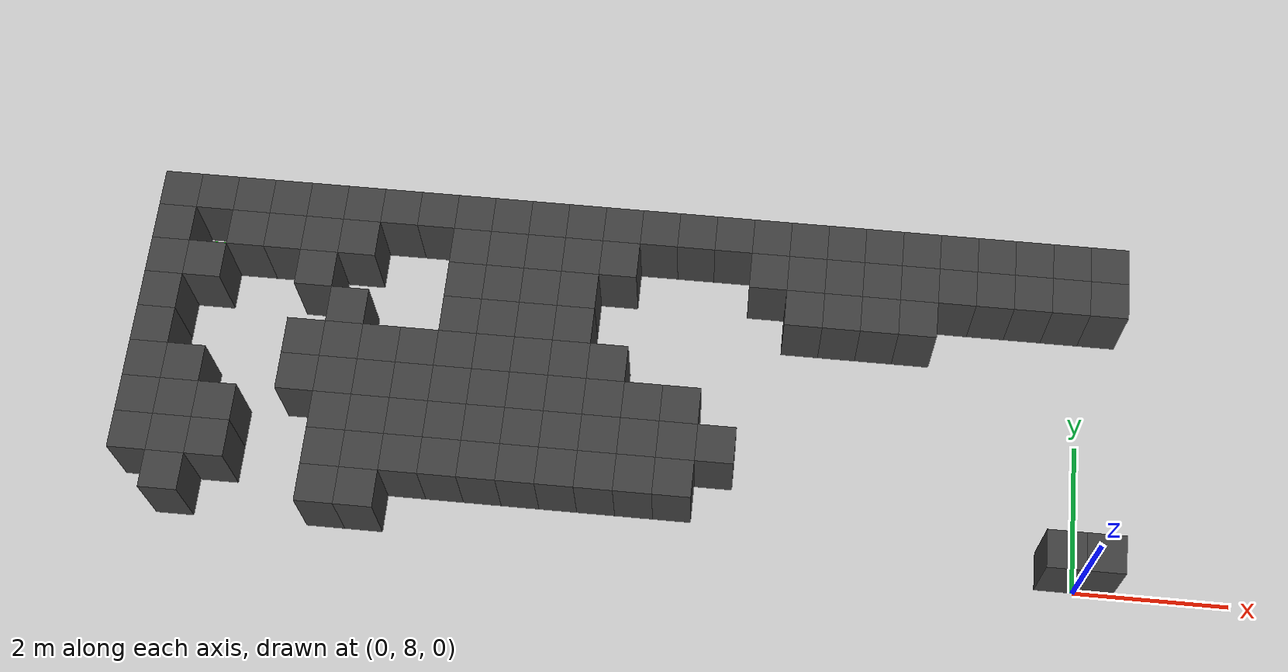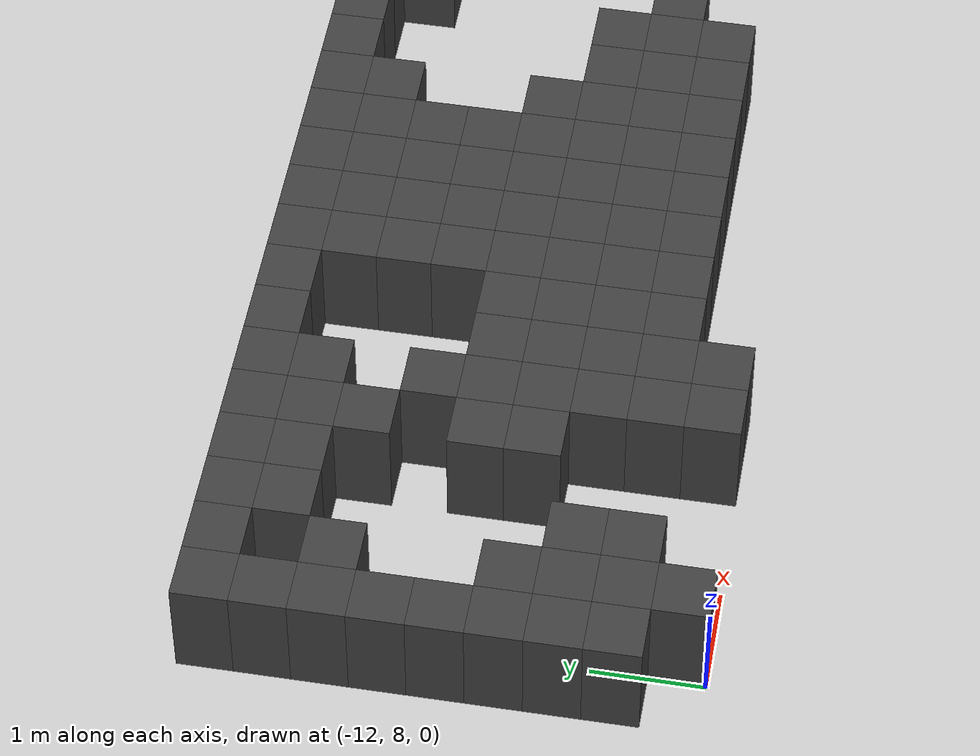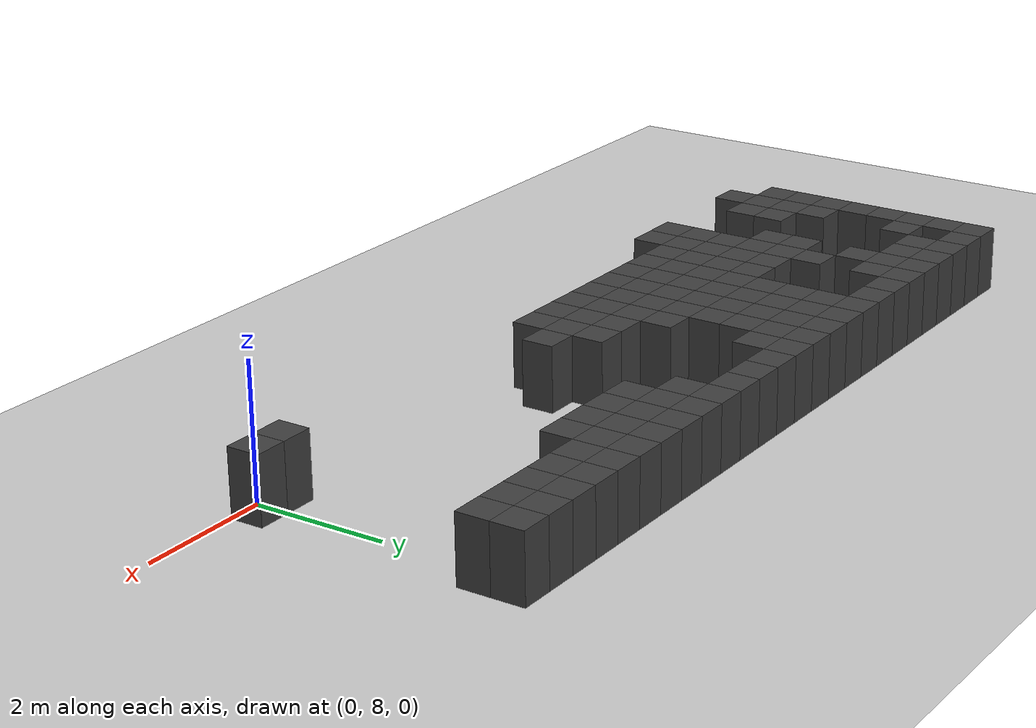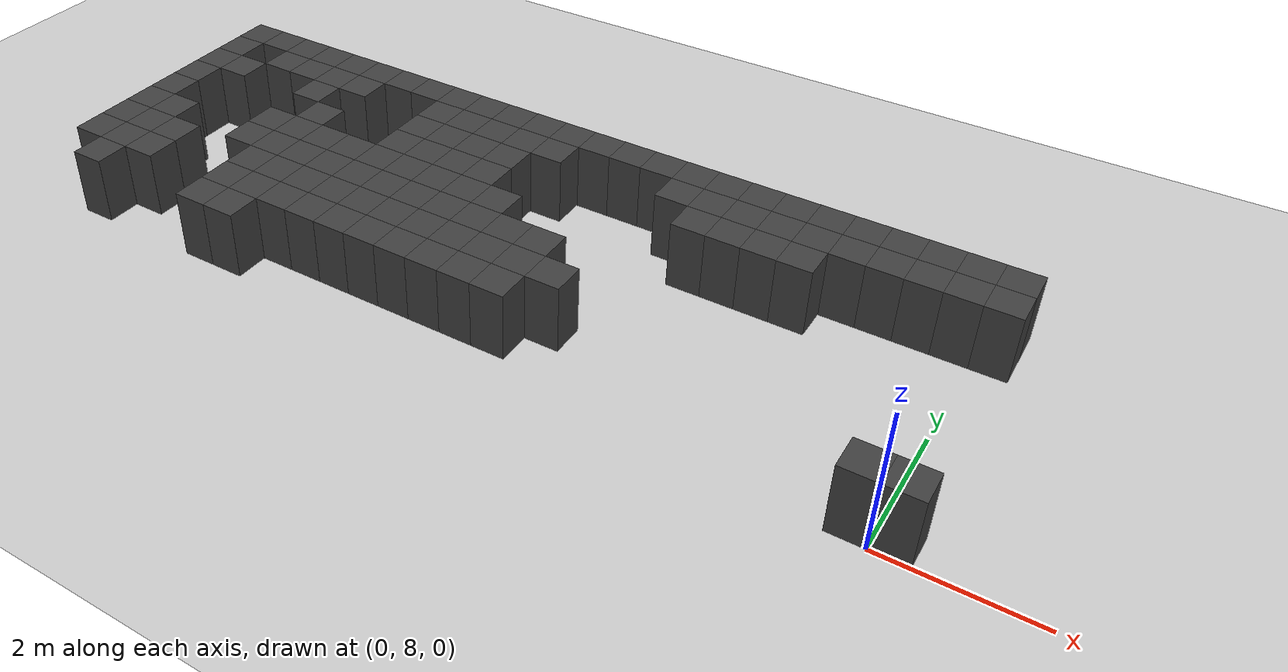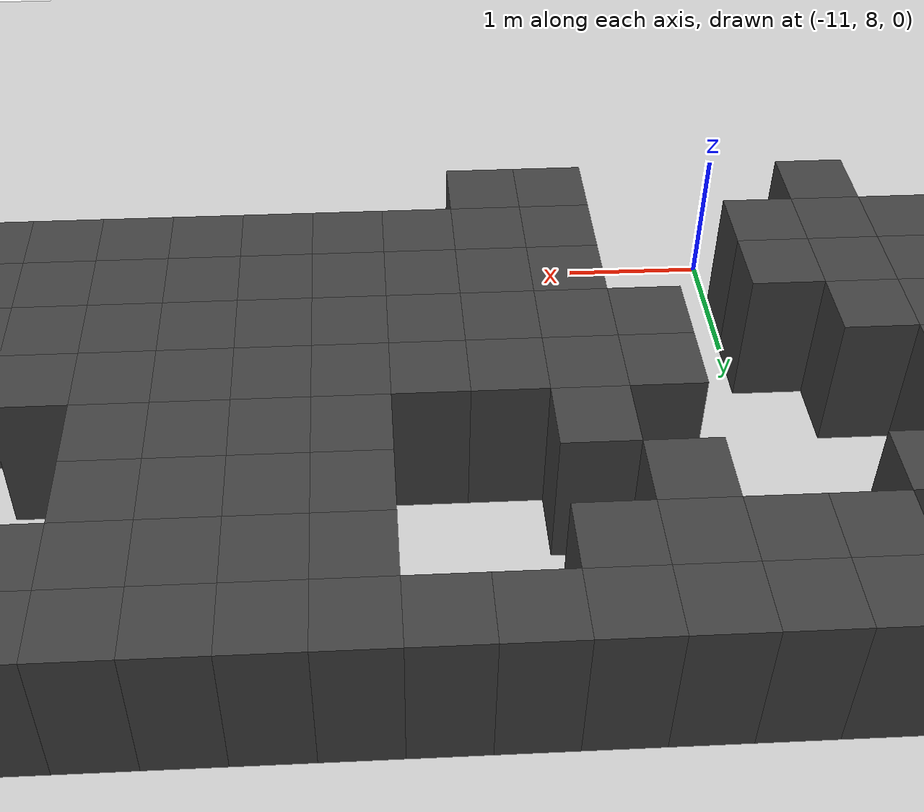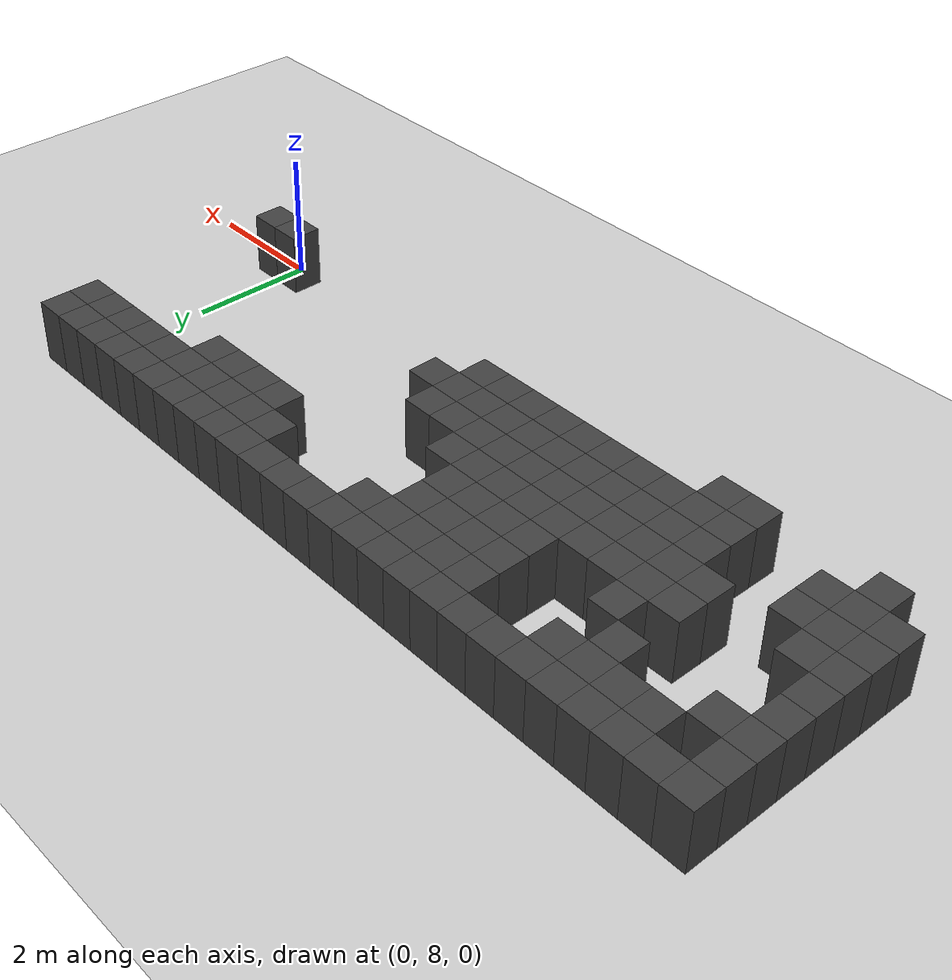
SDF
<sdf version="1.7">
 <world name="map_9826">
  <model name="ground_plane">
   <static>true</static>
   <link name="link">
    <collision name="collision">
     <geometry><plane><normal>0 0 1</normal><size>200 200</size></plane></geometry>
    </collision>
    <visual name="visual">
     <geometry><plane><normal>0 0 1</normal><size>200 200</size></plane></geometry>
     <material><ambient>0.8 0.8 0.8 1</ambient><diffuse>0.8 0.8 0.8 1</diffuse></material>
    </visual>
   </link>
  </model>
  <model name="maze_environment">
   <static>true</static>
   <link name="wall_0">
    <pose>-12.250 12.250 0.500 0 0 0</pose>
    <collision name="col"><geometry><box><size>0.5 0.5 1.0</size></box></geometry></collision>
    <visual name="vis">
     <geometry><box><size>0.5 0.5 1.0</size></box></geometry>
     <material><ambient>0.15 0.15 0.15 1</ambient><diffuse>0.25 0.25 0.25 1</diffuse></material>
    </visual>
   </link>
   <link name="wall_1">
    <pose>-11.750 12.250 0.500 0 0 0</pose>
    <collision name="col"><geometry><box><size>0.5 0.5 1.0</size></box></geometry></collision>
    <visual name="vis">
     <geometry><box><size>0.5 0.5 1.0</size></box></geometry>
     <material><ambient>0.15 0.15 0.15 1</ambient><diffuse>0.25 0.25 0.25 1</diffuse></material>
    </visual>
   </link>
   <link name="wall_2">
    <pose>-11.250 12.250 0.500 0 0 0</pose>
    <collision name="col"><geometry><box><size>0.5 0.5 1.0</size></box></geometry></collision>
    <visual name="vis">
     <geometry><box><size>0.5 0.5 1.0</size></box></geometry>
     <material><ambient>0.15 0.15 0.15 1</ambient><diffuse>0.25 0.25 0.25 1</diffuse></material>
    </visual>
   </link>
   <link name="wall_3">
    <pose>-10.750 12.250 0.500 0 0 0</pose>
    <collision name="col"><geometry><box><size>0.5 0.5 1.0</size></box></geometry></collision>
    <visual name="vis">
     <geometry><box><size>0.5 0.5 1.0</size></box></geometry>
     <material><ambient>0.15 0.15 0.15 1</ambient><diffuse>0.25 0.25 0.25 1</diffuse></material>
    </visual>
   </link>
   <link name="wall_4">
    <pose>-10.250 12.250 0.500 0 0 0</pose>
    <collision name="col"><geometry><box><size>0.5 0.5 1.0</size></box></geometry></collision>
    <visual name="vis">
     <geometry><box><size>0.5 0.5 1.0</size></box></geometry>
     <material><ambient>0.15 0.15 0.15 1</ambient><diffuse>0.25 0.25 0.25 1</diffuse></material>
    </visual>
   </link>
   <link name="wall_5">
    <pose>-9.750 12.250 0.500 0 0 0</pose>
    <collision name="col"><geometry><box><size>0.5 0.5 1.0</size></box></geometry></collision>
    <visual name="vis">
     <geometry><box><size>0.5 0.5 1.0</size></box></geometry>
     <material><ambient>0.15 0.15 0.15 1</ambient><diffuse>0.25 0.25 0.25 1</diffuse></material>
    </visual>
   </link>
   <link name="wall_6">
    <pose>-9.250 12.250 0.500 0 0 0</pose>
    <collision name="col"><geometry><box><size>0.5 0.5 1.0</size></box></geometry></collision>
    <visual name="vis">
     <geometry><box><size>0.5 0.5 1.0</size></box></geometry>
     <material><ambient>0.15 0.15 0.15 1</ambient><diffuse>0.25 0.25 0.25 1</diffuse></material>
    </visual>
   </link>
   <link name="wall_7">
    <pose>-8.750 12.250 0.500 0 0 0</pose>
    <collision name="col"><geometry><box><size>0.5 0.5 1.0</size></box></geometry></collision>
    <visual name="vis">
     <geometry><box><size>0.5 0.5 1.0</size></box></geometry>
     <material><ambient>0.15 0.15 0.15 1</ambient><diffuse>0.25 0.25 0.25 1</diffuse></material>
    </visual>
   </link>
   <link name="wall_8">
    <pose>-8.250 12.250 0.500 0 0 0</pose>
    <collision name="col"><geometry><box><size>0.5 0.5 1.0</size></box></geometry></collision>
    <visual name="vis">
     <geometry><box><size>0.5 0.5 1.0</size></box></geometry>
     <material><ambient>0.15 0.15 0.15 1</ambient><diffuse>0.25 0.25 0.25 1</diffuse></material>
    </visual>
   </link>
   <link name="wall_9">
    <pose>-7.750 12.250 0.500 0 0 0</pose>
    <collision name="col"><geometry><box><size>0.5 0.5 1.0</size></box></geometry></collision>
    <visual name="vis">
     <geometry><box><size>0.5 0.5 1.0</size></box></geometry>
     <material><ambient>0.15 0.15 0.15 1</ambient><diffuse>0.25 0.25 0.25 1</diffuse></material>
    </visual>
   </link>
   <link name="wall_10">
    <pose>-7.250 12.250 0.500 0 0 0</pose>
    <collision name="col"><geometry><box><size>0.5 0.5 1.0</size></box></geometry></collision>
    <visual name="vis">
     <geometry><box><size>0.5 0.5 1.0</size></box></geometry>
     <material><ambient>0.15 0.15 0.15 1</ambient><diffuse>0.25 0.25 0.25 1</diffuse></material>
    </visual>
   </link>
   <link name="wall_11">
    <pose>-6.750 12.250 0.500 0 0 0</pose>
    <collision name="col"><geometry><box><size>0.5 0.5 1.0</size></box></geometry></collision>
    <visual name="vis">
     <geometry><box><size>0.5 0.5 1.0</size></box></geometry>
     <material><ambient>0.15 0.15 0.15 1</ambient><diffuse>0.25 0.25 0.25 1</diffuse></material>
    </visual>
   </link>
   <link name="wall_12">
    <pose>-6.250 12.250 0.500 0 0 0</pose>
    <collision name="col"><geometry><box><size>0.5 0.5 1.0</size></box></geometry></collision>
    <visual name="vis">
     <geometry><box><size>0.5 0.5 1.0</size></box></geometry>
     <material><ambient>0.15 0.15 0.15 1</ambient><diffuse>0.25 0.25 0.25 1</diffuse></material>
    </visual>
   </link>
   <link name="wall_13">
    <pose>-5.750 12.250 0.500 0 0 0</pose>
    <collision name="col"><geometry><box><size>0.5 0.5 1.0</size></box></geometry></collision>
    <visual name="vis">
     <geometry><box><size>0.5 0.5 1.0</size></box></geometry>
     <material><ambient>0.15 0.15 0.15 1</ambient><diffuse>0.25 0.25 0.25 1</diffuse></material>
    </visual>
   </link>
   <link name="wall_14">
    <pose>-5.250 12.250 0.500 0 0 0</pose>
    <collision name="col"><geometry><box><size>0.5 0.5 1.0</size></box></geometry></collision>
    <visual name="vis">
     <geometry><box><size>0.5 0.5 1.0</size></box></geometry>
     <material><ambient>0.15 0.15 0.15 1</ambient><diffuse>0.25 0.25 0.25 1</diffuse></material>
    </visual>
   </link>
   <link name="wall_15">
    <pose>-4.750 12.250 0.500 0 0 0</pose>
    <collision name="col"><geometry><box><size>0.5 0.5 1.0</size></box></geometry></collision>
    <visual name="vis">
     <geometry><box><size>0.5 0.5 1.0</size></box></geometry>
     <material><ambient>0.15 0.15 0.15 1</ambient><diffuse>0.25 0.25 0.25 1</diffuse></material>
    </visual>
   </link>
   <link name="wall_16">
    <pose>-4.250 12.250 0.500 0 0 0</pose>
    <collision name="col"><geometry><box><size>0.5 0.5 1.0</size></box></geometry></collision>
    <visual name="vis">
     <geometry><box><size>0.5 0.5 1.0</size></box></geometry>
     <material><ambient>0.15 0.15 0.15 1</ambient><diffuse>0.25 0.25 0.25 1</diffuse></material>
    </visual>
   </link>
   <link name="wall_17">
    <pose>-3.750 12.250 0.500 0 0 0</pose>
    <collision name="col"><geometry><box><size>0.5 0.5 1.0</size></box></geometry></collision>
    <visual name="vis">
     <geometry><box><size>0.5 0.5 1.0</size></box></geometry>
     <material><ambient>0.15 0.15 0.15 1</ambient><diffuse>0.25 0.25 0.25 1</diffuse></material>
    </visual>
   </link>
   <link name="wall_18">
    <pose>-3.250 12.250 0.500 0 0 0</pose>
    <collision name="col"><geometry><box><size>0.5 0.5 1.0</size></box></geometry></collision>
    <visual name="vis">
     <geometry><box><size>0.5 0.5 1.0</size></box></geometry>
     <material><ambient>0.15 0.15 0.15 1</ambient><diffuse>0.25 0.25 0.25 1</diffuse></material>
    </visual>
   </link>
   <link name="wall_19">
    <pose>-2.750 12.250 0.500 0 0 0</pose>
    <collision name="col"><geometry><box><size>0.5 0.5 1.0</size></box></geometry></collision>
    <visual name="vis">
     <geometry><box><size>0.5 0.5 1.0</size></box></geometry>
     <material><ambient>0.15 0.15 0.15 1</ambient><diffuse>0.25 0.25 0.25 1</diffuse></material>
    </visual>
   </link>
   <link name="wall_20">
    <pose>-2.250 12.250 0.500 0 0 0</pose>
    <collision name="col"><geometry><box><size>0.5 0.5 1.0</size></box></geometry></collision>
    <visual name="vis">
     <geometry><box><size>0.5 0.5 1.0</size></box></geometry>
     <material><ambient>0.15 0.15 0.15 1</ambient><diffuse>0.25 0.25 0.25 1</diffuse></material>
    </visual>
   </link>
   <link name="wall_21">
    <pose>-1.750 12.250 0.500 0 0 0</pose>
    <collision name="col"><geometry><box><size>0.5 0.5 1.0</size></box></geometry></collision>
    <visual name="vis">
     <geometry><box><size>0.5 0.5 1.0</size></box></geometry>
     <material><ambient>0.15 0.15 0.15 1</ambient><diffuse>0.25 0.25 0.25 1</diffuse></material>
    </visual>
   </link>
   <link name="wall_22">
    <pose>-1.250 12.250 0.500 0 0 0</pose>
    <collision name="col"><geometry><box><size>0.5 0.5 1.0</size></box></geometry></collision>
    <visual name="vis">
     <geometry><box><size>0.5 0.5 1.0</size></box></geometry>
     <material><ambient>0.15 0.15 0.15 1</ambient><diffuse>0.25 0.25 0.25 1</diffuse></material>
    </visual>
   </link>
   <link name="wall_23">
    <pose>-0.750 12.250 0.500 0 0 0</pose>
    <collision name="col"><geometry><box><size>0.5 0.5 1.0</size></box></geometry></collision>
    <visual name="vis">
     <geometry><box><size>0.5 0.5 1.0</size></box></geometry>
     <material><ambient>0.15 0.15 0.15 1</ambient><diffuse>0.25 0.25 0.25 1</diffuse></material>
    </visual>
   </link>
   <link name="wall_24">
    <pose>-0.250 12.250 0.500 0 0 0</pose>
    <collision name="col"><geometry><box><size>0.5 0.5 1.0</size></box></geometry></collision>
    <visual name="vis">
     <geometry><box><size>0.5 0.5 1.0</size></box></geometry>
     <material><ambient>0.15 0.15 0.15 1</ambient><diffuse>0.25 0.25 0.25 1</diffuse></material>
    </visual>
   </link>
   <link name="wall_25">
    <pose>0.250 12.250 0.500 0 0 0</pose>
    <collision name="col"><geometry><box><size>0.5 0.5 1.0</size></box></geometry></collision>
    <visual name="vis">
     <geometry><box><size>0.5 0.5 1.0</size></box></geometry>
     <material><ambient>0.15 0.15 0.15 1</ambient><diffuse>0.25 0.25 0.25 1</diffuse></material>
    </visual>
   </link>
   <link name="wall_50">
    <pose>-12.250 11.750 0.500 0 0 0</pose>
    <collision name="col"><geometry><box><size>0.5 0.5 1.0</size></box></geometry></collision>
    <visual name="vis">
     <geometry><box><size>0.5 0.5 1.0</size></box></geometry>
     <material><ambient>0.15 0.15 0.15 1</ambient><diffuse>0.25 0.25 0.25 1</diffuse></material>
    </visual>
   </link>
   <link name="wall_51">
    <pose>-11.250 11.750 0.500 0 0 0</pose>
    <collision name="col"><geometry><box><size>0.5 0.5 1.0</size></box></geometry></collision>
    <visual name="vis">
     <geometry><box><size>0.5 0.5 1.0</size></box></geometry>
     <material><ambient>0.15 0.15 0.15 1</ambient><diffuse>0.25 0.25 0.25 1</diffuse></material>
    </visual>
   </link>
   <link name="wall_52">
    <pose>-10.750 11.750 0.500 0 0 0</pose>
    <collision name="col"><geometry><box><size>0.5 0.5 1.0</size></box></geometry></collision>
    <visual name="vis">
     <geometry><box><size>0.5 0.5 1.0</size></box></geometry>
     <material><ambient>0.15 0.15 0.15 1</ambient><diffuse>0.25 0.25 0.25 1</diffuse></material>
    </visual>
   </link>
   <link name="wall_53">
    <pose>-10.250 11.750 0.500 0 0 0</pose>
    <collision name="col"><geometry><box><size>0.5 0.5 1.0</size></box></geometry></collision>
    <visual name="vis">
     <geometry><box><size>0.5 0.5 1.0</size></box></geometry>
     <material><ambient>0.15 0.15 0.15 1</ambient><diffuse>0.25 0.25 0.25 1</diffuse></material>
    </visual>
   </link>
   <link name="wall_54">
    <pose>-9.750 11.750 0.500 0 0 0</pose>
    <collision name="col"><geometry><box><size>0.5 0.5 1.0</size></box></geometry></collision>
    <visual name="vis">
     <geometry><box><size>0.5 0.5 1.0</size></box></geometry>
     <material><ambient>0.15 0.15 0.15 1</ambient><diffuse>0.25 0.25 0.25 1</diffuse></material>
    </visual>
   </link>
   <link name="wall_55">
    <pose>-8.250 11.750 0.500 0 0 0</pose>
    <collision name="col"><geometry><box><size>0.5 0.5 1.0</size></box></geometry></collision>
    <visual name="vis">
     <geometry><box><size>0.5 0.5 1.0</size></box></geometry>
     <material><ambient>0.15 0.15 0.15 1</ambient><diffuse>0.25 0.25 0.25 1</diffuse></material>
    </visual>
   </link>
   <link name="wall_56">
    <pose>-7.750 11.750 0.500 0 0 0</pose>
    <collision name="col"><geometry><box><size>0.5 0.5 1.0</size></box></geometry></collision>
    <visual name="vis">
     <geometry><box><size>0.5 0.5 1.0</size></box></geometry>
     <material><ambient>0.15 0.15 0.15 1</ambient><diffuse>0.25 0.25 0.25 1</diffuse></material>
    </visual>
   </link>
   <link name="wall_57">
    <pose>-7.250 11.750 0.500 0 0 0</pose>
    <collision name="col"><geometry><box><size>0.5 0.5 1.0</size></box></geometry></collision>
    <visual name="vis">
     <geometry><box><size>0.5 0.5 1.0</size></box></geometry>
     <material><ambient>0.15 0.15 0.15 1</ambient><diffuse>0.25 0.25 0.25 1</diffuse></material>
    </visual>
   </link>
   <link name="wall_58">
    <pose>-6.750 11.750 0.500 0 0 0</pose>
    <collision name="col"><geometry><box><size>0.5 0.5 1.0</size></box></geometry></collision>
    <visual name="vis">
     <geometry><box><size>0.5 0.5 1.0</size></box></geometry>
     <material><ambient>0.15 0.15 0.15 1</ambient><diffuse>0.25 0.25 0.25 1</diffuse></material>
    </visual>
   </link>
   <link name="wall_59">
    <pose>-6.250 11.750 0.500 0 0 0</pose>
    <collision name="col"><geometry><box><size>0.5 0.5 1.0</size></box></geometry></collision>
    <visual name="vis">
     <geometry><box><size>0.5 0.5 1.0</size></box></geometry>
     <material><ambient>0.15 0.15 0.15 1</ambient><diffuse>0.25 0.25 0.25 1</diffuse></material>
    </visual>
   </link>
   <link name="wall_60">
    <pose>-4.250 11.750 0.500 0 0 0</pose>
    <collision name="col"><geometry><box><size>0.5 0.5 1.0</size></box></geometry></collision>
    <visual name="vis">
     <geometry><box><size>0.5 0.5 1.0</size></box></geometry>
     <material><ambient>0.15 0.15 0.15 1</ambient><diffuse>0.25 0.25 0.25 1</diffuse></material>
    </visual>
   </link>
   <link name="wall_61">
    <pose>-3.750 11.750 0.500 0 0 0</pose>
    <collision name="col"><geometry><box><size>0.5 0.5 1.0</size></box></geometry></collision>
    <visual name="vis">
     <geometry><box><size>0.5 0.5 1.0</size></box></geometry>
     <material><ambient>0.15 0.15 0.15 1</ambient><diffuse>0.25 0.25 0.25 1</diffuse></material>
    </visual>
   </link>
   <link name="wall_62">
    <pose>-3.250 11.750 0.500 0 0 0</pose>
    <collision name="col"><geometry><box><size>0.5 0.5 1.0</size></box></geometry></collision>
    <visual name="vis">
     <geometry><box><size>0.5 0.5 1.0</size></box></geometry>
     <material><ambient>0.15 0.15 0.15 1</ambient><diffuse>0.25 0.25 0.25 1</diffuse></material>
    </visual>
   </link>
   <link name="wall_63">
    <pose>-2.750 11.750 0.500 0 0 0</pose>
    <collision name="col"><geometry><box><size>0.5 0.5 1.0</size></box></geometry></collision>
    <visual name="vis">
     <geometry><box><size>0.5 0.5 1.0</size></box></geometry>
     <material><ambient>0.15 0.15 0.15 1</ambient><diffuse>0.25 0.25 0.25 1</diffuse></material>
    </visual>
   </link>
   <link name="wall_64">
    <pose>-2.250 11.750 0.500 0 0 0</pose>
    <collision name="col"><geometry><box><size>0.5 0.5 1.0</size></box></geometry></collision>
    <visual name="vis">
     <geometry><box><size>0.5 0.5 1.0</size></box></geometry>
     <material><ambient>0.15 0.15 0.15 1</ambient><diffuse>0.25 0.25 0.25 1</diffuse></material>
    </visual>
   </link>
   <link name="wall_65">
    <pose>-1.750 11.750 0.500 0 0 0</pose>
    <collision name="col"><geometry><box><size>0.5 0.5 1.0</size></box></geometry></collision>
    <visual name="vis">
     <geometry><box><size>0.5 0.5 1.0</size></box></geometry>
     <material><ambient>0.15 0.15 0.15 1</ambient><diffuse>0.25 0.25 0.25 1</diffuse></material>
    </visual>
   </link>
   <link name="wall_66">
    <pose>-1.250 11.750 0.500 0 0 0</pose>
    <collision name="col"><geometry><box><size>0.5 0.5 1.0</size></box></geometry></collision>
    <visual name="vis">
     <geometry><box><size>0.5 0.5 1.0</size></box></geometry>
     <material><ambient>0.15 0.15 0.15 1</ambient><diffuse>0.25 0.25 0.25 1</diffuse></material>
    </visual>
   </link>
   <link name="wall_67">
    <pose>-0.750 11.750 0.500 0 0 0</pose>
    <collision name="col"><geometry><box><size>0.5 0.5 1.0</size></box></geometry></collision>
    <visual name="vis">
     <geometry><box><size>0.5 0.5 1.0</size></box></geometry>
     <material><ambient>0.15 0.15 0.15 1</ambient><diffuse>0.25 0.25 0.25 1</diffuse></material>
    </visual>
   </link>
   <link name="wall_68">
    <pose>-0.250 11.750 0.500 0 0 0</pose>
    <collision name="col"><geometry><box><size>0.5 0.5 1.0</size></box></geometry></collision>
    <visual name="vis">
     <geometry><box><size>0.5 0.5 1.0</size></box></geometry>
     <material><ambient>0.15 0.15 0.15 1</ambient><diffuse>0.25 0.25 0.25 1</diffuse></material>
    </visual>
   </link>
   <link name="wall_69">
    <pose>0.250 11.750 0.500 0 0 0</pose>
    <collision name="col"><geometry><box><size>0.5 0.5 1.0</size></box></geometry></collision>
    <visual name="vis">
     <geometry><box><size>0.5 0.5 1.0</size></box></geometry>
     <material><ambient>0.15 0.15 0.15 1</ambient><diffuse>0.25 0.25 0.25 1</diffuse></material>
    </visual>
   </link>
   <link name="wall_91">
    <pose>-12.250 11.250 0.500 0 0 0</pose>
    <collision name="col"><geometry><box><size>0.5 0.5 1.0</size></box></geometry></collision>
    <visual name="vis">
     <geometry><box><size>0.5 0.5 1.0</size></box></geometry>
     <material><ambient>0.15 0.15 0.15 1</ambient><diffuse>0.25 0.25 0.25 1</diffuse></material>
    </visual>
   </link>
   <link name="wall_92">
    <pose>-11.750 11.250 0.500 0 0 0</pose>
    <collision name="col"><geometry><box><size>0.5 0.5 1.0</size></box></geometry></collision>
    <visual name="vis">
     <geometry><box><size>0.5 0.5 1.0</size></box></geometry>
     <material><ambient>0.15 0.15 0.15 1</ambient><diffuse>0.25 0.25 0.25 1</diffuse></material>
    </visual>
   </link>
   <link name="wall_93">
    <pose>-10.250 11.250 0.500 0 0 0</pose>
    <collision name="col"><geometry><box><size>0.5 0.5 1.0</size></box></geometry></collision>
    <visual name="vis">
     <geometry><box><size>0.5 0.5 1.0</size></box></geometry>
     <material><ambient>0.15 0.15 0.15 1</ambient><diffuse>0.25 0.25 0.25 1</diffuse></material>
    </visual>
   </link>
   <link name="wall_94">
    <pose>-8.250 11.250 0.500 0 0 0</pose>
    <collision name="col"><geometry><box><size>0.5 0.5 1.0</size></box></geometry></collision>
    <visual name="vis">
     <geometry><box><size>0.5 0.5 1.0</size></box></geometry>
     <material><ambient>0.15 0.15 0.15 1</ambient><diffuse>0.25 0.25 0.25 1</diffuse></material>
    </visual>
   </link>
   <link name="wall_95">
    <pose>-7.750 11.250 0.500 0 0 0</pose>
    <collision name="col"><geometry><box><size>0.5 0.5 1.0</size></box></geometry></collision>
    <visual name="vis">
     <geometry><box><size>0.5 0.5 1.0</size></box></geometry>
     <material><ambient>0.15 0.15 0.15 1</ambient><diffuse>0.25 0.25 0.25 1</diffuse></material>
    </visual>
   </link>
   <link name="wall_96">
    <pose>-7.250 11.250 0.500 0 0 0</pose>
    <collision name="col"><geometry><box><size>0.5 0.5 1.0</size></box></geometry></collision>
    <visual name="vis">
     <geometry><box><size>0.5 0.5 1.0</size></box></geometry>
     <material><ambient>0.15 0.15 0.15 1</ambient><diffuse>0.25 0.25 0.25 1</diffuse></material>
    </visual>
   </link>
   <link name="wall_97">
    <pose>-6.750 11.250 0.500 0 0 0</pose>
    <collision name="col"><geometry><box><size>0.5 0.5 1.0</size></box></geometry></collision>
    <visual name="vis">
     <geometry><box><size>0.5 0.5 1.0</size></box></geometry>
     <material><ambient>0.15 0.15 0.15 1</ambient><diffuse>0.25 0.25 0.25 1</diffuse></material>
    </visual>
   </link>
   <link name="wall_98">
    <pose>-3.750 11.250 0.500 0 0 0</pose>
    <collision name="col"><geometry><box><size>0.5 0.5 1.0</size></box></geometry></collision>
    <visual name="vis">
     <geometry><box><size>0.5 0.5 1.0</size></box></geometry>
     <material><ambient>0.15 0.15 0.15 1</ambient><diffuse>0.25 0.25 0.25 1</diffuse></material>
    </visual>
   </link>
   <link name="wall_99">
    <pose>-3.250 11.250 0.500 0 0 0</pose>
    <collision name="col"><geometry><box><size>0.5 0.5 1.0</size></box></geometry></collision>
    <visual name="vis">
     <geometry><box><size>0.5 0.5 1.0</size></box></geometry>
     <material><ambient>0.15 0.15 0.15 1</ambient><diffuse>0.25 0.25 0.25 1</diffuse></material>
    </visual>
   </link>
   <link name="wall_100">
    <pose>-2.750 11.250 0.500 0 0 0</pose>
    <collision name="col"><geometry><box><size>0.5 0.5 1.0</size></box></geometry></collision>
    <visual name="vis">
     <geometry><box><size>0.5 0.5 1.0</size></box></geometry>
     <material><ambient>0.15 0.15 0.15 1</ambient><diffuse>0.25 0.25 0.25 1</diffuse></material>
    </visual>
   </link>
   <link name="wall_101">
    <pose>-2.250 11.250 0.500 0 0 0</pose>
    <collision name="col"><geometry><box><size>0.5 0.5 1.0</size></box></geometry></collision>
    <visual name="vis">
     <geometry><box><size>0.5 0.5 1.0</size></box></geometry>
     <material><ambient>0.15 0.15 0.15 1</ambient><diffuse>0.25 0.25 0.25 1</diffuse></material>
    </visual>
   </link>
   <link name="wall_121">
    <pose>-12.250 10.750 0.500 0 0 0</pose>
    <collision name="col"><geometry><box><size>0.5 0.5 1.0</size></box></geometry></collision>
    <visual name="vis">
     <geometry><box><size>0.5 0.5 1.0</size></box></geometry>
     <material><ambient>0.15 0.15 0.15 1</ambient><diffuse>0.25 0.25 0.25 1</diffuse></material>
    </visual>
   </link>
   <link name="wall_122">
    <pose>-9.750 10.750 0.500 0 0 0</pose>
    <collision name="col"><geometry><box><size>0.5 0.5 1.0</size></box></geometry></collision>
    <visual name="vis">
     <geometry><box><size>0.5 0.5 1.0</size></box></geometry>
     <material><ambient>0.15 0.15 0.15 1</ambient><diffuse>0.25 0.25 0.25 1</diffuse></material>
    </visual>
   </link>
   <link name="wall_123">
    <pose>-8.250 10.750 0.500 0 0 0</pose>
    <collision name="col"><geometry><box><size>0.5 0.5 1.0</size></box></geometry></collision>
    <visual name="vis">
     <geometry><box><size>0.5 0.5 1.0</size></box></geometry>
     <material><ambient>0.15 0.15 0.15 1</ambient><diffuse>0.25 0.25 0.25 1</diffuse></material>
    </visual>
   </link>
   <link name="wall_124">
    <pose>-7.750 10.750 0.500 0 0 0</pose>
    <collision name="col"><geometry><box><size>0.5 0.5 1.0</size></box></geometry></collision>
    <visual name="vis">
     <geometry><box><size>0.5 0.5 1.0</size></box></geometry>
     <material><ambient>0.15 0.15 0.15 1</ambient><diffuse>0.25 0.25 0.25 1</diffuse></material>
    </visual>
   </link>
   <link name="wall_125">
    <pose>-7.250 10.750 0.500 0 0 0</pose>
    <collision name="col"><geometry><box><size>0.5 0.5 1.0</size></box></geometry></collision>
    <visual name="vis">
     <geometry><box><size>0.5 0.5 1.0</size></box></geometry>
     <material><ambient>0.15 0.15 0.15 1</ambient><diffuse>0.25 0.25 0.25 1</diffuse></material>
    </visual>
   </link>
   <link name="wall_126">
    <pose>-6.750 10.750 0.500 0 0 0</pose>
    <collision name="col"><geometry><box><size>0.5 0.5 1.0</size></box></geometry></collision>
    <visual name="vis">
     <geometry><box><size>0.5 0.5 1.0</size></box></geometry>
     <material><ambient>0.15 0.15 0.15 1</ambient><diffuse>0.25 0.25 0.25 1</diffuse></material>
    </visual>
   </link>
   <link name="wall_146">
    <pose>-12.250 10.250 0.500 0 0 0</pose>
    <collision name="col"><geometry><box><size>0.5 0.5 1.0</size></box></geometry></collision>
    <visual name="vis">
     <geometry><box><size>0.5 0.5 1.0</size></box></geometry>
     <material><ambient>0.15 0.15 0.15 1</ambient><diffuse>0.25 0.25 0.25 1</diffuse></material>
    </visual>
   </link>
   <link name="wall_147">
    <pose>-10.250 10.250 0.500 0 0 0</pose>
    <collision name="col"><geometry><box><size>0.5 0.5 1.0</size></box></geometry></collision>
    <visual name="vis">
     <geometry><box><size>0.5 0.5 1.0</size></box></geometry>
     <material><ambient>0.15 0.15 0.15 1</ambient><diffuse>0.25 0.25 0.25 1</diffuse></material>
    </visual>
   </link>
   <link name="wall_148">
    <pose>-9.750 10.250 0.500 0 0 0</pose>
    <collision name="col"><geometry><box><size>0.5 0.5 1.0</size></box></geometry></collision>
    <visual name="vis">
     <geometry><box><size>0.5 0.5 1.0</size></box></geometry>
     <material><ambient>0.15 0.15 0.15 1</ambient><diffuse>0.25 0.25 0.25 1</diffuse></material>
    </visual>
   </link>
   <link name="wall_149">
    <pose>-9.250 10.250 0.500 0 0 0</pose>
    <collision name="col"><geometry><box><size>0.5 0.5 1.0</size></box></geometry></collision>
    <visual name="vis">
     <geometry><box><size>0.5 0.5 1.0</size></box></geometry>
     <material><ambient>0.15 0.15 0.15 1</ambient><diffuse>0.25 0.25 0.25 1</diffuse></material>
    </visual>
   </link>
   <link name="wall_150">
    <pose>-8.750 10.250 0.500 0 0 0</pose>
    <collision name="col"><geometry><box><size>0.5 0.5 1.0</size></box></geometry></collision>
    <visual name="vis">
     <geometry><box><size>0.5 0.5 1.0</size></box></geometry>
     <material><ambient>0.15 0.15 0.15 1</ambient><diffuse>0.25 0.25 0.25 1</diffuse></material>
    </visual>
   </link>
   <link name="wall_151">
    <pose>-8.250 10.250 0.500 0 0 0</pose>
    <collision name="col"><geometry><box><size>0.5 0.5 1.0</size></box></geometry></collision>
    <visual name="vis">
     <geometry><box><size>0.5 0.5 1.0</size></box></geometry>
     <material><ambient>0.15 0.15 0.15 1</ambient><diffuse>0.25 0.25 0.25 1</diffuse></material>
    </visual>
   </link>
   <link name="wall_152">
    <pose>-7.750 10.250 0.500 0 0 0</pose>
    <collision name="col"><geometry><box><size>0.5 0.5 1.0</size></box></geometry></collision>
    <visual name="vis">
     <geometry><box><size>0.5 0.5 1.0</size></box></geometry>
     <material><ambient>0.15 0.15 0.15 1</ambient><diffuse>0.25 0.25 0.25 1</diffuse></material>
    </visual>
   </link>
   <link name="wall_153">
    <pose>-7.250 10.250 0.500 0 0 0</pose>
    <collision name="col"><geometry><box><size>0.5 0.5 1.0</size></box></geometry></collision>
    <visual name="vis">
     <geometry><box><size>0.5 0.5 1.0</size></box></geometry>
     <material><ambient>0.15 0.15 0.15 1</ambient><diffuse>0.25 0.25 0.25 1</diffuse></material>
    </visual>
   </link>
   <link name="wall_154">
    <pose>-6.750 10.250 0.500 0 0 0</pose>
    <collision name="col"><geometry><box><size>0.5 0.5 1.0</size></box></geometry></collision>
    <visual name="vis">
     <geometry><box><size>0.5 0.5 1.0</size></box></geometry>
     <material><ambient>0.15 0.15 0.15 1</ambient><diffuse>0.25 0.25 0.25 1</diffuse></material>
    </visual>
   </link>
   <link name="wall_155">
    <pose>-6.250 10.250 0.500 0 0 0</pose>
    <collision name="col"><geometry><box><size>0.5 0.5 1.0</size></box></geometry></collision>
    <visual name="vis">
     <geometry><box><size>0.5 0.5 1.0</size></box></geometry>
     <material><ambient>0.15 0.15 0.15 1</ambient><diffuse>0.25 0.25 0.25 1</diffuse></material>
    </visual>
   </link>
   <link name="wall_173">
    <pose>-12.250 9.750 0.500 0 0 0</pose>
    <collision name="col"><geometry><box><size>0.5 0.5 1.0</size></box></geometry></collision>
    <visual name="vis">
     <geometry><box><size>0.5 0.5 1.0</size></box></geometry>
     <material><ambient>0.15 0.15 0.15 1</ambient><diffuse>0.25 0.25 0.25 1</diffuse></material>
    </visual>
   </link>
   <link name="wall_174">
    <pose>-11.750 9.750 0.500 0 0 0</pose>
    <collision name="col"><geometry><box><size>0.5 0.5 1.0</size></box></geometry></collision>
    <visual name="vis">
     <geometry><box><size>0.5 0.5 1.0</size></box></geometry>
     <material><ambient>0.15 0.15 0.15 1</ambient><diffuse>0.25 0.25 0.25 1</diffuse></material>
    </visual>
   </link>
   <link name="wall_175">
    <pose>-10.250 9.750 0.500 0 0 0</pose>
    <collision name="col"><geometry><box><size>0.5 0.5 1.0</size></box></geometry></collision>
    <visual name="vis">
     <geometry><box><size>0.5 0.5 1.0</size></box></geometry>
     <material><ambient>0.15 0.15 0.15 1</ambient><diffuse>0.25 0.25 0.25 1</diffuse></material>
    </visual>
   </link>
   <link name="wall_176">
    <pose>-9.750 9.750 0.500 0 0 0</pose>
    <collision name="col"><geometry><box><size>0.5 0.5 1.0</size></box></geometry></collision>
    <visual name="vis">
     <geometry><box><size>0.5 0.5 1.0</size></box></geometry>
     <material><ambient>0.15 0.15 0.15 1</ambient><diffuse>0.25 0.25 0.25 1</diffuse></material>
    </visual>
   </link>
   <link name="wall_177">
    <pose>-9.250 9.750 0.500 0 0 0</pose>
    <collision name="col"><geometry><box><size>0.5 0.5 1.0</size></box></geometry></collision>
    <visual name="vis">
     <geometry><box><size>0.5 0.5 1.0</size></box></geometry>
     <material><ambient>0.15 0.15 0.15 1</ambient><diffuse>0.25 0.25 0.25 1</diffuse></material>
    </visual>
   </link>
   <link name="wall_178">
    <pose>-8.750 9.750 0.500 0 0 0</pose>
    <collision name="col"><geometry><box><size>0.5 0.5 1.0</size></box></geometry></collision>
    <visual name="vis">
     <geometry><box><size>0.5 0.5 1.0</size></box></geometry>
     <material><ambient>0.15 0.15 0.15 1</ambient><diffuse>0.25 0.25 0.25 1</diffuse></material>
    </visual>
   </link>
   <link name="wall_179">
    <pose>-8.250 9.750 0.500 0 0 0</pose>
    <collision name="col"><geometry><box><size>0.5 0.5 1.0</size></box></geometry></collision>
    <visual name="vis">
     <geometry><box><size>0.5 0.5 1.0</size></box></geometry>
     <material><ambient>0.15 0.15 0.15 1</ambient><diffuse>0.25 0.25 0.25 1</diffuse></material>
    </visual>
   </link>
   <link name="wall_180">
    <pose>-7.750 9.750 0.500 0 0 0</pose>
    <collision name="col"><geometry><box><size>0.5 0.5 1.0</size></box></geometry></collision>
    <visual name="vis">
     <geometry><box><size>0.5 0.5 1.0</size></box></geometry>
     <material><ambient>0.15 0.15 0.15 1</ambient><diffuse>0.25 0.25 0.25 1</diffuse></material>
    </visual>
   </link>
   <link name="wall_181">
    <pose>-7.250 9.750 0.500 0 0 0</pose>
    <collision name="col"><geometry><box><size>0.5 0.5 1.0</size></box></geometry></collision>
    <visual name="vis">
     <geometry><box><size>0.5 0.5 1.0</size></box></geometry>
     <material><ambient>0.15 0.15 0.15 1</ambient><diffuse>0.25 0.25 0.25 1</diffuse></material>
    </visual>
   </link>
   <link name="wall_182">
    <pose>-6.750 9.750 0.500 0 0 0</pose>
    <collision name="col"><geometry><box><size>0.5 0.5 1.0</size></box></geometry></collision>
    <visual name="vis">
     <geometry><box><size>0.5 0.5 1.0</size></box></geometry>
     <material><ambient>0.15 0.15 0.15 1</ambient><diffuse>0.25 0.25 0.25 1</diffuse></material>
    </visual>
   </link>
   <link name="wall_183">
    <pose>-6.250 9.750 0.500 0 0 0</pose>
    <collision name="col"><geometry><box><size>0.5 0.5 1.0</size></box></geometry></collision>
    <visual name="vis">
     <geometry><box><size>0.5 0.5 1.0</size></box></geometry>
     <material><ambient>0.15 0.15 0.15 1</ambient><diffuse>0.25 0.25 0.25 1</diffuse></material>
    </visual>
   </link>
   <link name="wall_184">
    <pose>-5.750 9.750 0.500 0 0 0</pose>
    <collision name="col"><geometry><box><size>0.5 0.5 1.0</size></box></geometry></collision>
    <visual name="vis">
     <geometry><box><size>0.5 0.5 1.0</size></box></geometry>
     <material><ambient>0.15 0.15 0.15 1</ambient><diffuse>0.25 0.25 0.25 1</diffuse></material>
    </visual>
   </link>
   <link name="wall_185">
    <pose>-5.250 9.750 0.500 0 0 0</pose>
    <collision name="col"><geometry><box><size>0.5 0.5 1.0</size></box></geometry></collision>
    <visual name="vis">
     <geometry><box><size>0.5 0.5 1.0</size></box></geometry>
     <material><ambient>0.15 0.15 0.15 1</ambient><diffuse>0.25 0.25 0.25 1</diffuse></material>
    </visual>
   </link>
   <link name="wall_201">
    <pose>-12.250 9.250 0.500 0 0 0</pose>
    <collision name="col"><geometry><box><size>0.5 0.5 1.0</size></box></geometry></collision>
    <visual name="vis">
     <geometry><box><size>0.5 0.5 1.0</size></box></geometry>
     <material><ambient>0.15 0.15 0.15 1</ambient><diffuse>0.25 0.25 0.25 1</diffuse></material>
    </visual>
   </link>
   <link name="wall_202">
    <pose>-11.750 9.250 0.500 0 0 0</pose>
    <collision name="col"><geometry><box><size>0.5 0.5 1.0</size></box></geometry></collision>
    <visual name="vis">
     <geometry><box><size>0.5 0.5 1.0</size></box></geometry>
     <material><ambient>0.15 0.15 0.15 1</ambient><diffuse>0.25 0.25 0.25 1</diffuse></material>
    </visual>
   </link>
   <link name="wall_203">
    <pose>-11.250 9.250 0.500 0 0 0</pose>
    <collision name="col"><geometry><box><size>0.5 0.5 1.0</size></box></geometry></collision>
    <visual name="vis">
     <geometry><box><size>0.5 0.5 1.0</size></box></geometry>
     <material><ambient>0.15 0.15 0.15 1</ambient><diffuse>0.25 0.25 0.25 1</diffuse></material>
    </visual>
   </link>
   <link name="wall_204">
    <pose>-9.750 9.250 0.500 0 0 0</pose>
    <collision name="col"><geometry><box><size>0.5 0.5 1.0</size></box></geometry></collision>
    <visual name="vis">
     <geometry><box><size>0.5 0.5 1.0</size></box></geometry>
     <material><ambient>0.15 0.15 0.15 1</ambient><diffuse>0.25 0.25 0.25 1</diffuse></material>
    </visual>
   </link>
   <link name="wall_205">
    <pose>-9.250 9.250 0.500 0 0 0</pose>
    <collision name="col"><geometry><box><size>0.5 0.5 1.0</size></box></geometry></collision>
    <visual name="vis">
     <geometry><box><size>0.5 0.5 1.0</size></box></geometry>
     <material><ambient>0.15 0.15 0.15 1</ambient><diffuse>0.25 0.25 0.25 1</diffuse></material>
    </visual>
   </link>
   <link name="wall_206">
    <pose>-8.750 9.250 0.500 0 0 0</pose>
    <collision name="col"><geometry><box><size>0.5 0.5 1.0</size></box></geometry></collision>
    <visual name="vis">
     <geometry><box><size>0.5 0.5 1.0</size></box></geometry>
     <material><ambient>0.15 0.15 0.15 1</ambient><diffuse>0.25 0.25 0.25 1</diffuse></material>
    </visual>
   </link>
   <link name="wall_207">
    <pose>-8.250 9.250 0.500 0 0 0</pose>
    <collision name="col"><geometry><box><size>0.5 0.5 1.0</size></box></geometry></collision>
    <visual name="vis">
     <geometry><box><size>0.5 0.5 1.0</size></box></geometry>
     <material><ambient>0.15 0.15 0.15 1</ambient><diffuse>0.25 0.25 0.25 1</diffuse></material>
    </visual>
   </link>
   <link name="wall_208">
    <pose>-7.750 9.250 0.500 0 0 0</pose>
    <collision name="col"><geometry><box><size>0.5 0.5 1.0</size></box></geometry></collision>
    <visual name="vis">
     <geometry><box><size>0.5 0.5 1.0</size></box></geometry>
     <material><ambient>0.15 0.15 0.15 1</ambient><diffuse>0.25 0.25 0.25 1</diffuse></material>
    </visual>
   </link>
   <link name="wall_209">
    <pose>-7.250 9.250 0.500 0 0 0</pose>
    <collision name="col"><geometry><box><size>0.5 0.5 1.0</size></box></geometry></collision>
    <visual name="vis">
     <geometry><box><size>0.5 0.5 1.0</size></box></geometry>
     <material><ambient>0.15 0.15 0.15 1</ambient><diffuse>0.25 0.25 0.25 1</diffuse></material>
    </visual>
   </link>
   <link name="wall_210">
    <pose>-6.750 9.250 0.500 0 0 0</pose>
    <collision name="col"><geometry><box><size>0.5 0.5 1.0</size></box></geometry></collision>
    <visual name="vis">
     <geometry><box><size>0.5 0.5 1.0</size></box></geometry>
     <material><ambient>0.15 0.15 0.15 1</ambient><diffuse>0.25 0.25 0.25 1</diffuse></material>
    </visual>
   </link>
   <link name="wall_211">
    <pose>-6.250 9.250 0.500 0 0 0</pose>
    <collision name="col"><geometry><box><size>0.5 0.5 1.0</size></box></geometry></collision>
    <visual name="vis">
     <geometry><box><size>0.5 0.5 1.0</size></box></geometry>
     <material><ambient>0.15 0.15 0.15 1</ambient><diffuse>0.25 0.25 0.25 1</diffuse></material>
    </visual>
   </link>
   <link name="wall_212">
    <pose>-5.750 9.250 0.500 0 0 0</pose>
    <collision name="col"><geometry><box><size>0.5 0.5 1.0</size></box></geometry></collision>
    <visual name="vis">
     <geometry><box><size>0.5 0.5 1.0</size></box></geometry>
     <material><ambient>0.15 0.15 0.15 1</ambient><diffuse>0.25 0.25 0.25 1</diffuse></material>
    </visual>
   </link>
   <link name="wall_213">
    <pose>-5.250 9.250 0.500 0 0 0</pose>
    <collision name="col"><geometry><box><size>0.5 0.5 1.0</size></box></geometry></collision>
    <visual name="vis">
     <geometry><box><size>0.5 0.5 1.0</size></box></geometry>
     <material><ambient>0.15 0.15 0.15 1</ambient><diffuse>0.25 0.25 0.25 1</diffuse></material>
    </visual>
   </link>
   <link name="wall_214">
    <pose>-4.750 9.250 0.500 0 0 0</pose>
    <collision name="col"><geometry><box><size>0.5 0.5 1.0</size></box></geometry></collision>
    <visual name="vis">
     <geometry><box><size>0.5 0.5 1.0</size></box></geometry>
     <material><ambient>0.15 0.15 0.15 1</ambient><diffuse>0.25 0.25 0.25 1</diffuse></material>
    </visual>
   </link>
   <link name="wall_227">
    <pose>-12.250 8.750 0.500 0 0 0</pose>
    <collision name="col"><geometry><box><size>0.5 0.5 1.0</size></box></geometry></collision>
    <visual name="vis">
     <geometry><box><size>0.5 0.5 1.0</size></box></geometry>
     <material><ambient>0.15 0.15 0.15 1</ambient><diffuse>0.25 0.25 0.25 1</diffuse></material>
    </visual>
   </link>
   <link name="wall_228">
    <pose>-11.750 8.750 0.500 0 0 0</pose>
    <collision name="col"><geometry><box><size>0.5 0.5 1.0</size></box></geometry></collision>
    <visual name="vis">
     <geometry><box><size>0.5 0.5 1.0</size></box></geometry>
     <material><ambient>0.15 0.15 0.15 1</ambient><diffuse>0.25 0.25 0.25 1</diffuse></material>
    </visual>
   </link>
   <link name="wall_229">
    <pose>-11.250 8.750 0.500 0 0 0</pose>
    <collision name="col"><geometry><box><size>0.5 0.5 1.0</size></box></geometry></collision>
    <visual name="vis">
     <geometry><box><size>0.5 0.5 1.0</size></box></geometry>
     <material><ambient>0.15 0.15 0.15 1</ambient><diffuse>0.25 0.25 0.25 1</diffuse></material>
    </visual>
   </link>
   <link name="wall_230">
    <pose>-9.750 8.750 0.500 0 0 0</pose>
    <collision name="col"><geometry><box><size>0.5 0.5 1.0</size></box></geometry></collision>
    <visual name="vis">
     <geometry><box><size>0.5 0.5 1.0</size></box></geometry>
     <material><ambient>0.15 0.15 0.15 1</ambient><diffuse>0.25 0.25 0.25 1</diffuse></material>
    </visual>
   </link>
   <link name="wall_231">
    <pose>-9.250 8.750 0.500 0 0 0</pose>
    <collision name="col"><geometry><box><size>0.5 0.5 1.0</size></box></geometry></collision>
    <visual name="vis">
     <geometry><box><size>0.5 0.5 1.0</size></box></geometry>
     <material><ambient>0.15 0.15 0.15 1</ambient><diffuse>0.25 0.25 0.25 1</diffuse></material>
    </visual>
   </link>
   <link name="wall_232">
    <pose>-8.750 8.750 0.500 0 0 0</pose>
    <collision name="col"><geometry><box><size>0.5 0.5 1.0</size></box></geometry></collision>
    <visual name="vis">
     <geometry><box><size>0.5 0.5 1.0</size></box></geometry>
     <material><ambient>0.15 0.15 0.15 1</ambient><diffuse>0.25 0.25 0.25 1</diffuse></material>
    </visual>
   </link>
   <link name="wall_233">
    <pose>-8.250 8.750 0.500 0 0 0</pose>
    <collision name="col"><geometry><box><size>0.5 0.5 1.0</size></box></geometry></collision>
    <visual name="vis">
     <geometry><box><size>0.5 0.5 1.0</size></box></geometry>
     <material><ambient>0.15 0.15 0.15 1</ambient><diffuse>0.25 0.25 0.25 1</diffuse></material>
    </visual>
   </link>
   <link name="wall_234">
    <pose>-7.750 8.750 0.500 0 0 0</pose>
    <collision name="col"><geometry><box><size>0.5 0.5 1.0</size></box></geometry></collision>
    <visual name="vis">
     <geometry><box><size>0.5 0.5 1.0</size></box></geometry>
     <material><ambient>0.15 0.15 0.15 1</ambient><diffuse>0.25 0.25 0.25 1</diffuse></material>
    </visual>
   </link>
   <link name="wall_235">
    <pose>-7.250 8.750 0.500 0 0 0</pose>
    <collision name="col"><geometry><box><size>0.5 0.5 1.0</size></box></geometry></collision>
    <visual name="vis">
     <geometry><box><size>0.5 0.5 1.0</size></box></geometry>
     <material><ambient>0.15 0.15 0.15 1</ambient><diffuse>0.25 0.25 0.25 1</diffuse></material>
    </visual>
   </link>
   <link name="wall_236">
    <pose>-6.750 8.750 0.500 0 0 0</pose>
    <collision name="col"><geometry><box><size>0.5 0.5 1.0</size></box></geometry></collision>
    <visual name="vis">
     <geometry><box><size>0.5 0.5 1.0</size></box></geometry>
     <material><ambient>0.15 0.15 0.15 1</ambient><diffuse>0.25 0.25 0.25 1</diffuse></material>
    </visual>
   </link>
   <link name="wall_237">
    <pose>-6.250 8.750 0.500 0 0 0</pose>
    <collision name="col"><geometry><box><size>0.5 0.5 1.0</size></box></geometry></collision>
    <visual name="vis">
     <geometry><box><size>0.5 0.5 1.0</size></box></geometry>
     <material><ambient>0.15 0.15 0.15 1</ambient><diffuse>0.25 0.25 0.25 1</diffuse></material>
    </visual>
   </link>
   <link name="wall_238">
    <pose>-5.750 8.750 0.500 0 0 0</pose>
    <collision name="col"><geometry><box><size>0.5 0.5 1.0</size></box></geometry></collision>
    <visual name="vis">
     <geometry><box><size>0.5 0.5 1.0</size></box></geometry>
     <material><ambient>0.15 0.15 0.15 1</ambient><diffuse>0.25 0.25 0.25 1</diffuse></material>
    </visual>
   </link>
   <link name="wall_239">
    <pose>-5.250 8.750 0.500 0 0 0</pose>
    <collision name="col"><geometry><box><size>0.5 0.5 1.0</size></box></geometry></collision>
    <visual name="vis">
     <geometry><box><size>0.5 0.5 1.0</size></box></geometry>
     <material><ambient>0.15 0.15 0.15 1</ambient><diffuse>0.25 0.25 0.25 1</diffuse></material>
    </visual>
   </link>
   <link name="wall_252">
    <pose>-11.750 8.250 0.500 0 0 0</pose>
    <collision name="col"><geometry><box><size>0.5 0.5 1.0</size></box></geometry></collision>
    <visual name="vis">
     <geometry><box><size>0.5 0.5 1.0</size></box></geometry>
     <material><ambient>0.15 0.15 0.15 1</ambient><diffuse>0.25 0.25 0.25 1</diffuse></material>
    </visual>
   </link>
   <link name="wall_253">
    <pose>-9.750 8.250 0.500 0 0 0</pose>
    <collision name="col"><geometry><box><size>0.5 0.5 1.0</size></box></geometry></collision>
    <visual name="vis">
     <geometry><box><size>0.5 0.5 1.0</size></box></geometry>
     <material><ambient>0.15 0.15 0.15 1</ambient><diffuse>0.25 0.25 0.25 1</diffuse></material>
    </visual>
   </link>
   <link name="wall_254">
    <pose>-9.250 8.250 0.500 0 0 0</pose>
    <collision name="col"><geometry><box><size>0.5 0.5 1.0</size></box></geometry></collision>
    <visual name="vis">
     <geometry><box><size>0.5 0.5 1.0</size></box></geometry>
     <material><ambient>0.15 0.15 0.15 1</ambient><diffuse>0.25 0.25 0.25 1</diffuse></material>
    </visual>
   </link>
   <link name="wall_255">
    <pose>-0.250 8.250 0.500 0 0 0</pose>
    <collision name="col"><geometry><box><size>0.5 0.5 1.0</size></box></geometry></collision>
    <visual name="vis">
     <geometry><box><size>0.5 0.5 1.0</size></box></geometry>
     <material><ambient>0.15 0.15 0.15 1</ambient><diffuse>0.25 0.25 0.25 1</diffuse></material>
    </visual>
   </link>
   <link name="wall_256">
    <pose>0.250 8.250 0.500 0 0 0</pose>
    <collision name="col"><geometry><box><size>0.5 0.5 1.0</size></box></geometry></collision>
    <visual name="vis">
     <geometry><box><size>0.5 0.5 1.0</size></box></geometry>
     <material><ambient>0.15 0.15 0.15 1</ambient><diffuse>0.25 0.25 0.25 1</diffuse></material>
    </visual>
   </link>
   <link name="start_zone">
    <pose>-11.750 11.750 0.005 0 0 0</pose>
    <visual name="vis">
     <geometry><box><size>0.45 0.45 0.01</size></box></geometry>
     <material>
      <ambient>0.0 1.0 0.0 1</ambient>
      <diffuse>0.0 1.0 0.0 1</diffuse>
      <emissive>0.00 0.60 0.00 1</emissive>
     </material>
    </visual>
   </link>
  </model>
 </world>
</sdf>
